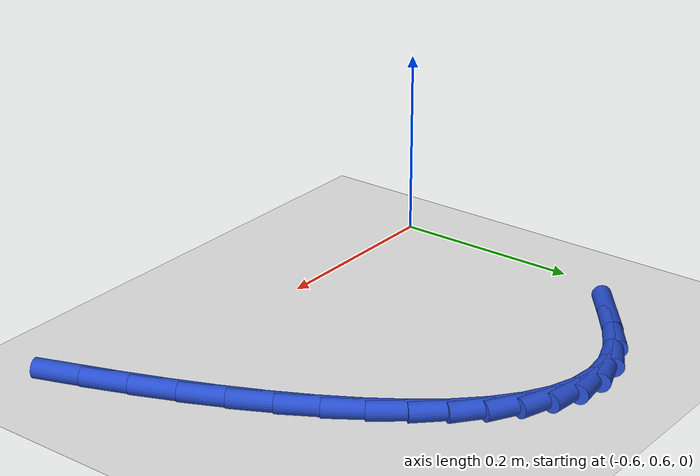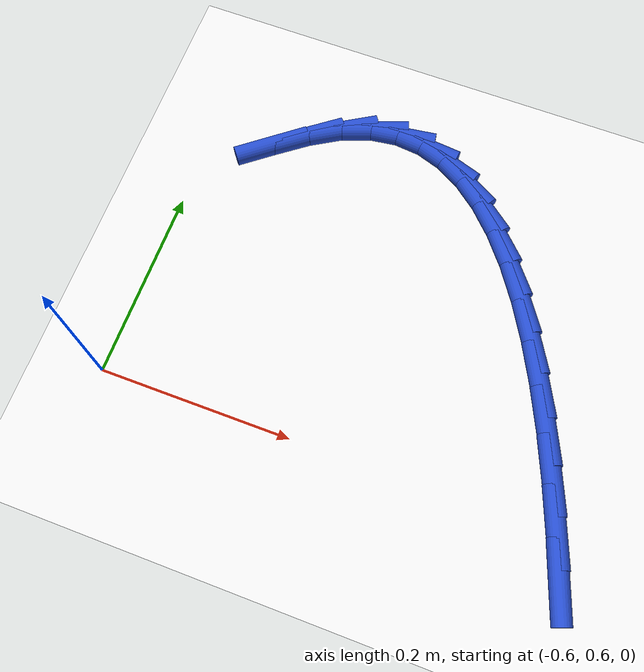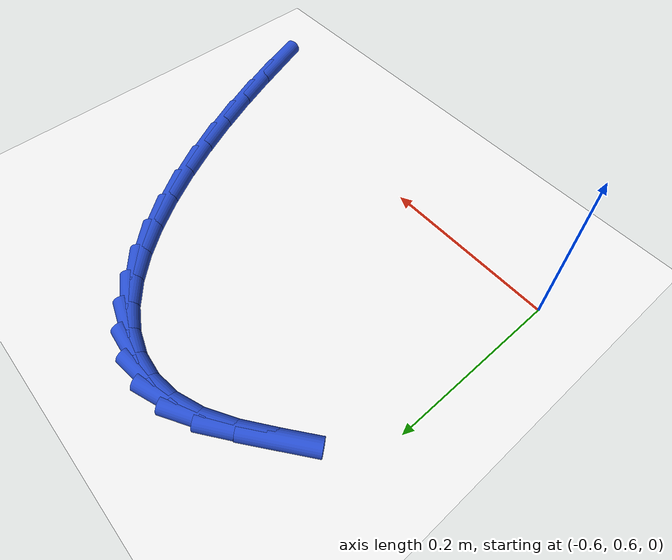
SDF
<sdf version="1.6">
 <world name="default">
  <model name="ground_plane">
   <static>1</static>
   <link name="link">
    <collision name="collision">
     <geometry><plane><normal>0 0 1</normal><size>100 100</size></plane></geometry>
     <surface><friction><ode><mu>100</mu><mu2>50</mu2></ode></friction></surface>
    </collision>
    <visual name="visual">
     <cast_shadows>0</cast_shadows>
     <geometry><plane><normal>0 0 1</normal><size>100 100</size></plane></geometry>
     <material>
      <script><uri>file://media/materials/scripts/gazebo.material</uri><name>Gazebo/WhiteGlow</name></script>
     </material>
    </visual>
   </link>
  </model>
  <model name="line">
   <link name="link_14">
    <pose>-0.11915262442970051 0.5605777399839015 0.01 0 1.57 -1.2289027898675515</pose>
    <collision name="collision">
     <geometry><cylinder><radius>0.01</radius><length>0.08</length></cylinder></geometry>
    </collision>
    <visual name="visual">
     <material>
      <script><name>Gazebo/Blue</name><uri>file://media/materials/scripts/gazebo.material</uri></script>
     </material>
     <geometry><cylinder><radius>0.01</radius><length>0.08</length></cylinder></geometry>
    </visual>
   </link>
   <link name="link_15">
    <pose>-0.13566342965842945 0.6069735071912683 0.01 0 1.57 -1.2021556669128068</pose>
    <collision name="collision">
     <geometry><cylinder><radius>0.01</radius><length>0.08</length></cylinder></geometry>
    </collision>
    <visual name="visual">
     <material>
      <script><name>Gazebo/Blue</name><uri>file://media/materials/scripts/gazebo.material</uri></script>
     </material>
     <geometry><cylinder><radius>0.01</radius><length>0.08</length></cylinder></geometry>
    </visual>
   </link>
   <link name="link_16">
    <pose>-0.15319598027651504 0.6523593313679301 0.01 0 1.57 -1.1710262550954402</pose>
    <collision name="collision">
     <geometry><cylinder><radius>0.01</radius><length>0.08</length></cylinder></geometry>
    </collision>
    <visual name="visual">
     <material>
      <script><name>Gazebo/Blue</name><uri>file://media/materials/scripts/gazebo.material</uri></script>
     </material>
     <geometry><cylinder><radius>0.01</radius><length>0.08</length></cylinder></geometry>
    </visual>
   </link>
   <link name="link_17">
    <pose>-0.1717433636014019 0.6962561552885697 0.01 0 1.57 -1.1343935214573693</pose>
    <collision name="collision">
     <geometry><cylinder><radius>0.01</radius><length>0.08</length></cylinder></geometry>
    </collision>
    <visual name="visual">
     <material>
      <script><name>Gazebo/Blue</name><uri>file://media/materials/scripts/gazebo.material</uri></script>
     </material>
     <geometry><cylinder><radius>0.01</radius><length>0.08</length></cylinder></geometry>
    </visual>
   </link>
   <link name="link_18">
    <pose>-0.19129866695053468 0.7381849217278688 0.01 0 1.57 -1.0907617606013689</pose>
    <collision name="collision">
     <geometry><cylinder><radius>0.01</radius><length>0.08</length></cylinder></geometry>
    </collision>
    <visual name="visual">
     <material>
      <script><name>Gazebo/Blue</name><uri>file://media/materials/scripts/gazebo.material</uri></script>
     </material>
     <geometry><cylinder><radius>0.01</radius><length>0.08</length></cylinder></geometry>
    </visual>
   </link>
   <link name="link_19">
    <pose>-0.21185497764135788 0.7776665734605097 0.01 0 1.57 -1.038113904352645</pose>
    <collision name="collision">
     <geometry><cylinder><radius>0.01</radius><length>0.08</length></cylinder></geometry>
    </collision>
    <visual name="visual">
     <material>
      <script><name>Gazebo/Blue</name><uri>file://media/materials/scripts/gazebo.material</uri></script>
     </material>
     <geometry><cylinder><radius>0.01</radius><length>0.08</length></cylinder></geometry>
    </visual>
   </link>
   <link name="link_20">
    <pose>-0.23340538299131622 0.8142220532611749 0.01 0 1.57 -0.9737142129901559</pose>
    <collision name="collision">
     <geometry><cylinder><radius>0.01</radius><length>0.08</length></cylinder></geometry>
    </collision>
    <visual name="visual">
     <material>
      <script><name>Gazebo/Blue</name><uri>file://media/materials/scripts/gazebo.material</uri></script>
     </material>
     <geometry><cylinder><radius>0.01</radius><length>0.08</length></cylinder></geometry>
    </visual>
   </link>
   <link name="link_21">
    <pose>-0.2559429703178542 0.8473723039045464 0.01 0 1.57 -0.8938697668677389</pose>
    <collision name="collision">
     <geometry><cylinder><radius>0.01</radius><length>0.08</length></cylinder></geometry>
    </collision>
    <visual name="visual">
     <material>
      <script><name>Gazebo/Blue</name><uri>file://media/materials/scripts/gazebo.material</uri></script>
     </material>
     <geometry><cylinder><radius>0.01</radius><length>0.08</length></cylinder></geometry>
    </visual>
   </link>
   <link name="link_22">
    <pose>-0.27946082693841645 0.8766382681653067 0.01 0 1.57 -0.7937270958802107</pose>
    <collision name="collision">
     <geometry><cylinder><radius>0.01</radius><length>0.08</length></cylinder></geometry>
    </collision>
    <visual name="visual">
     <material>
      <script><name>Gazebo/Blue</name><uri>file://media/materials/scripts/gazebo.material</uri></script>
     </material>
     <geometry><cylinder><radius>0.01</radius><length>0.08</length></cylinder></geometry>
    </visual>
   </link>
   <link name="link_23">
    <pose>-0.30395204017044775 0.9015408888181378 0.01 0 1.57 -0.6673708848554043</pose>
    <collision name="collision">
     <geometry><cylinder><radius>0.01</radius><length>0.08</length></cylinder></geometry>
    </collision>
    <visual name="visual">
     <material>
      <script><name>Gazebo/Blue</name><uri>file://media/materials/scripts/gazebo.material</uri></script>
     </material>
     <geometry><cylinder><radius>0.01</radius><length>0.08</length></cylinder></geometry>
    </visual>
   </link>
   <link name="link_24">
    <pose>-0.32940969733139247 0.9216011086377218 0.01 0 1.57 -0.508905908157725</pose>
    <collision name="collision">
     <geometry><cylinder><radius>0.01</radius><length>0.08</length></cylinder></geometry>
    </collision>
    <visual name="visual">
     <material>
      <script><name>Gazebo/Blue</name><uri>file://media/materials/scripts/gazebo.material</uri></script>
     </material>
     <geometry><cylinder><radius>0.01</radius><length>0.08</length></cylinder></geometry>
    </visual>
   </link>
   <link name="link_25">
    <pose>-0.3558268857386955 0.9363398703987417 0.01 0 1.57 -0.3156541800569162</pose>
    <collision name="collision">
     <geometry><cylinder><radius>0.01</radius><length>0.08</length></cylinder></geometry>
    </collision>
    <visual name="visual">
     <material>
      <script><name>Gazebo/Blue</name><uri>file://media/materials/scripts/gazebo.material</uri></script>
     </material>
     <geometry><cylinder><radius>0.01</radius><length>0.08</length></cylinder></geometry>
    </visual>
   </link>
   <link name="link_26">
    <pose>-0.38319669270980106 0.9452781168758788 0.01 0 1.57 -0.0936201269277796</pose>
    <collision name="collision">
     <geometry><cylinder><radius>0.01</radius><length>0.08</length></cylinder></geometry>
    </collision>
    <visual name="visual">
     <material>
      <script><name>Gazebo/Blue</name><uri>file://media/materials/scripts/gazebo.material</uri></script>
     </material>
     <geometry><cylinder><radius>0.01</radius><length>0.08</length></cylinder></geometry>
    </visual>
   </link>
   <link name="link_27">
    <pose>-0.41151220556215407 0.9479367908438159 0.01 0 1.57 0.13924187401673205</pose>
    <collision name="collision">
     <geometry><cylinder><radius>0.01</radius><length>0.08</length></cylinder></geometry>
    </collision>
    <visual name="visual">
     <material>
      <script><name>Gazebo/Blue</name><uri>file://media/materials/scripts/gazebo.material</uri></script>
     </material>
     <geometry><cylinder><radius>0.01</radius><length>0.08</length></cylinder></geometry>
    </visual>
   </link>
   <link name="link_28">
    <pose>-0.44076651161319924 0.9438368350772357 0.01 0 1.57 0.3592882050954425</pose>
    <collision name="collision">
     <geometry><cylinder><radius>0.01</radius><length>0.08</length></cylinder></geometry>
    </collision>
    <visual name="visual">
     <material>
      <script><name>Gazebo/Blue</name><uri>file://media/materials/scripts/gazebo.material</uri></script>
     </material>
     <geometry><cylinder><radius>0.01</radius><length>0.08</length></cylinder></geometry>
    </visual>
   </link>
   <link name="link_29">
    <pose>-0.4709526981803809 0.9324991923508192 0.01 0 1.57 0.5460162304907881</pose>
    <collision name="collision">
     <geometry><cylinder><radius>0.01</radius><length>0.08</length></cylinder></geometry>
    </collision>
    <visual name="visual">
     <material>
      <script><name>Gazebo/Blue</name><uri>file://media/materials/scripts/gazebo.material</uri></script>
     </material>
     <geometry><cylinder><radius>0.01</radius><length>0.08</length></cylinder></geometry>
    </visual>
   </link>
   <link name="link_30">
    <pose>-0.5020363328550971 0.9136116171520401 0.01 0 1.57 0.6529358614871058</pose>
    <collision name="collision">
     <geometry><cylinder><radius>0.01</radius><length>0.08</length></cylinder></geometry>
    </collision>
    <visual name="visual">
     <material>
      <script><name>Gazebo/Blue</name><uri>file://media/materials/scripts/gazebo.material</uri></script>
     </material>
     <geometry><cylinder><radius>0.01</radius><length>0.08</length></cylinder></geometry>
    </visual>
   </link>
   <link name="link_31">
    <pose>-0.5335458336221084 0.8895116604999899 0.01 0 1.57 0.6740015224264819</pose>
    <collision name="collision">
     <geometry><cylinder><radius>0.01</radius><length>0.08</length></cylinder></geometry>
    </collision>
    <visual name="visual">
     <material>
      <script><name>Gazebo/Blue</name><uri>file://media/materials/scripts/gazebo.material</uri></script>
     </material>
     <geometry><cylinder><radius>0.01</radius><length>0.08</length></cylinder></geometry>
    </visual>
   </link>
  </model>
 </world>
</sdf>
